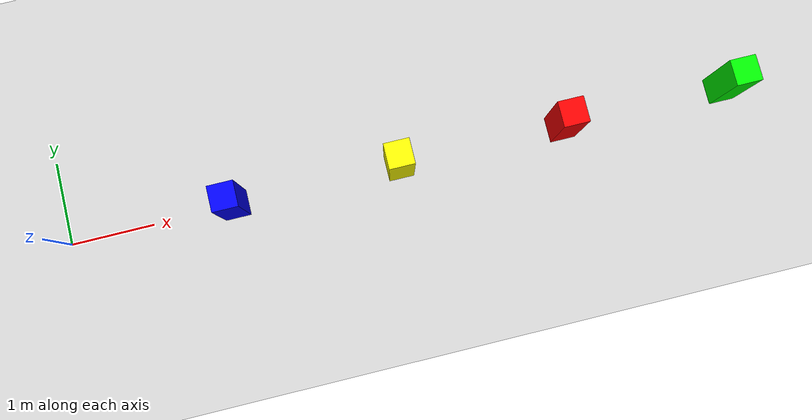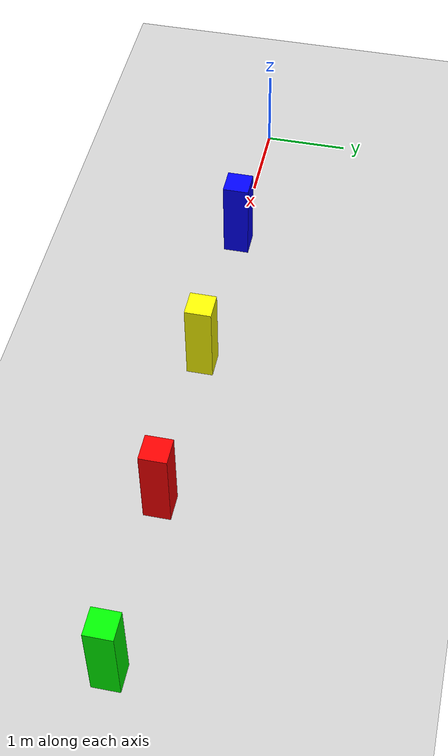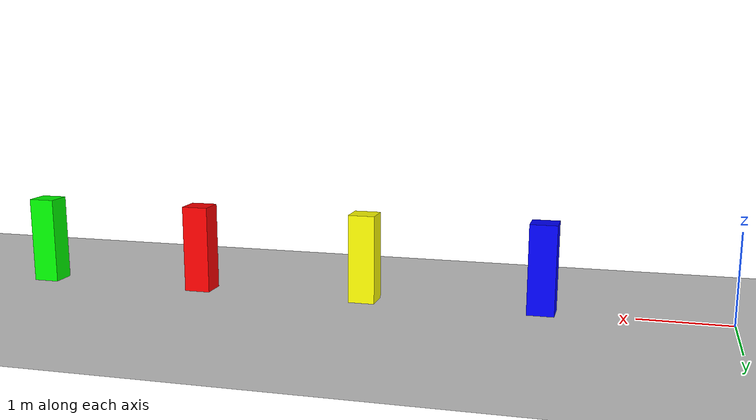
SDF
<?xml version="1.0" ?>
<sdf version="1.6">
  <world name="mvp_world">

    <include>
      <uri>model://ground_plane</uri>
    </include>

    <include>
      <uri>model://sun</uri>
    </include>

    <model name="left_sign">
      <static>true</static>
      <pose>2 0 0.5 0 0 0</pose>
      <link name="link">
        <visual name="visual">
          <geometry>
            <box>
              <size>0.3 0.3 1.0</size>
            </box>
          </geometry>
          <material>
            <ambient>0 0 1 1</ambient>
            <diffuse>0 0 1 1</diffuse>
          </material>
        </visual>
      </link>
    </model>

    <model name="right_sign">
      <static>true</static>
      <pose>4 0 0.5 0 0 0</pose>
      <link name="link">
        <visual name="visual">
          <geometry>
            <box>
              <size>0.3 0.3 1.0</size>
            </box>
          </geometry>
          <material>
            <ambient>1 1 0 1</ambient>
            <diffuse>1 1 0 1</diffuse>
          </material>
        </visual>
      </link>
    </model>

    <model name="stop_sign">
      <static>true</static>
      <pose>6 0 0.5 0 0 0</pose>
      <link name="link">
        <visual name="visual">
          <geometry>
            <box>
              <size>0.3 0.3 1.0</size>
            </box>
          </geometry>
          <material>
            <ambient>1 0 0 1</ambient>
            <diffuse>1 0 0 1</diffuse>
          </material>
        </visual>
      </link>
    </model>

    <model name="goal_sign">
      <static>true</static>
      <pose>8 0 0.5 0 0 0</pose>
      <link name="link">
        <visual name="visual">
          <geometry>
            <box>
              <size>0.3 0.3 1.0</size>
            </box>
          </geometry>
          <material>
            <ambient>0 1 0 1</ambient>
            <diffuse>0 1 0 1</diffuse>
          </material>
        </visual>
      </link>
    </model>

  </world>
</sdf>
